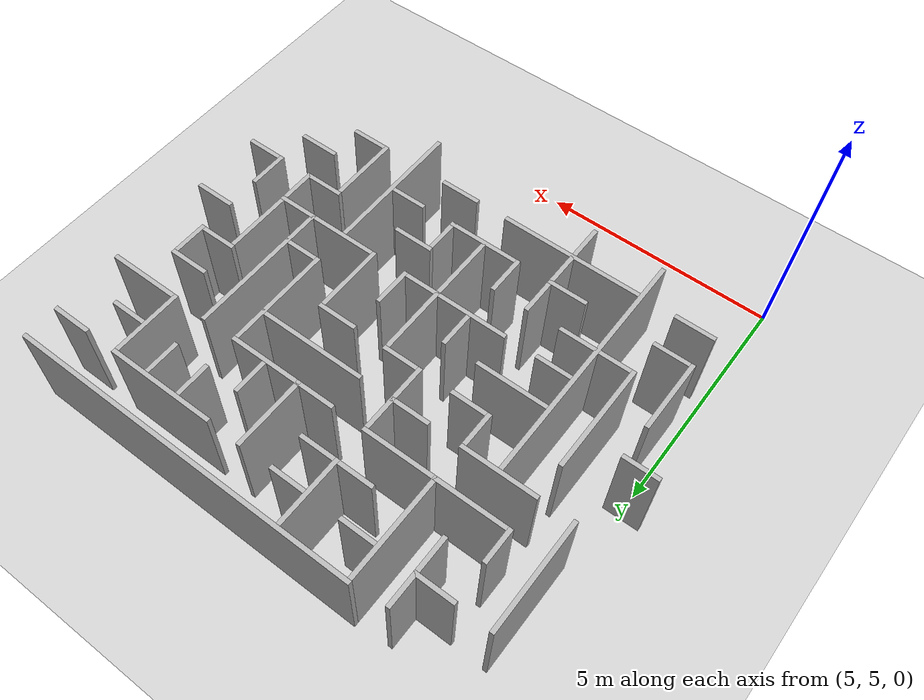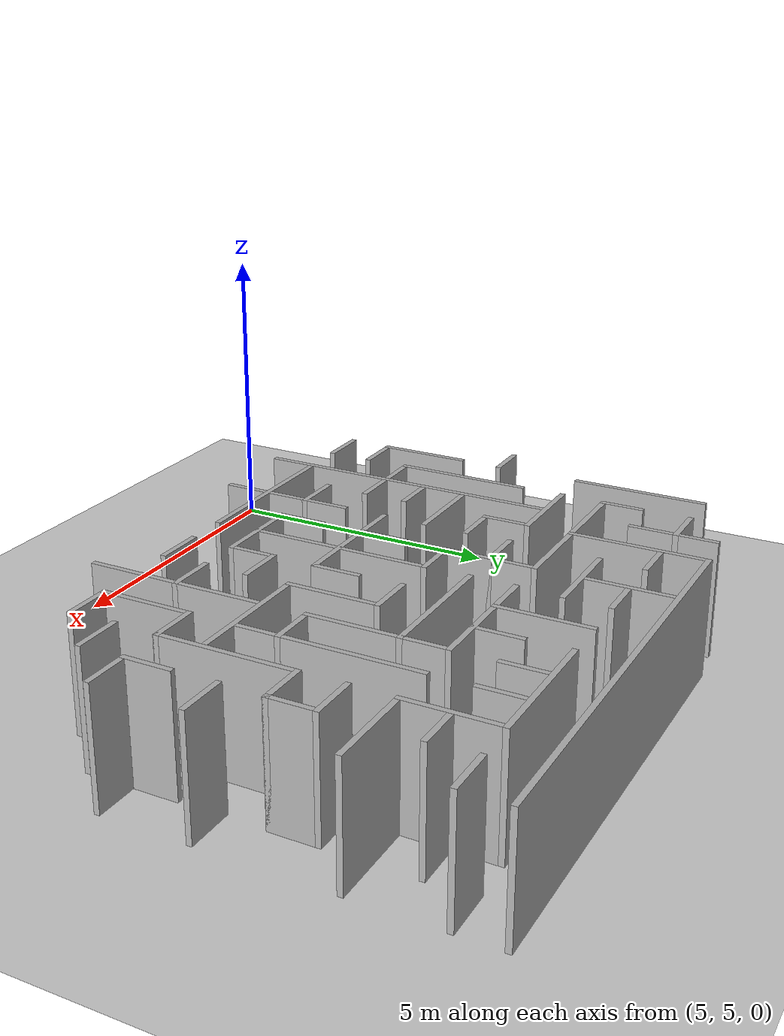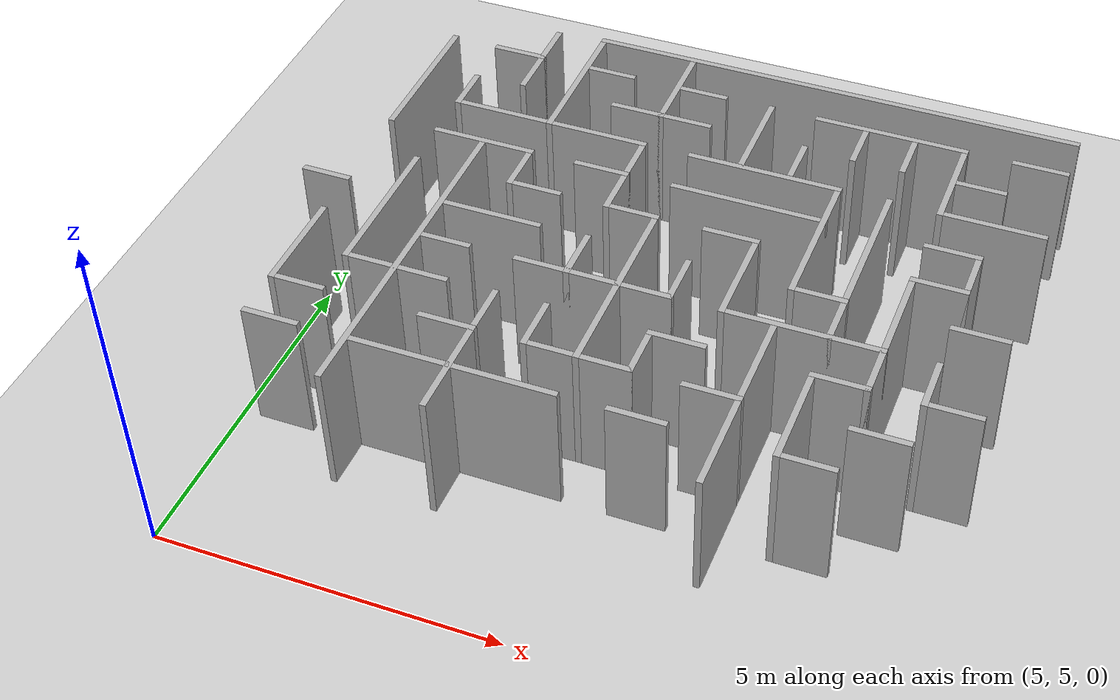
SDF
<sdf version="1.6">
 <world name="slam_world">
  <model name="ground_plane">
   <static>true</static>
   <link name="link">
    <collision name="collision">
     <geometry><plane><normal>0 0 1</normal><size>100 100</size></plane></geometry>
    </collision>
    <visual name="visual">
     <geometry><plane><normal>0 0 1</normal><size>100 100</size></plane></geometry>
     <material>
      <ambient>0.8 0.8 0.8 1</ambient>
      <diffuse>0.8 0.8 0.8 1</diffuse>
      <specular>0.8 0.8 0.8 1</specular>
     </material>
    </visual>
   </link>
  </model>
  <model name="wall_1">
   <static>true</static>
   <pose>11.203703703703704 14.907407407407408 1.0 0 0 0</pose>
   <link name="link">
    <collision name="collision">
     <geometry><box><size>7.500000000000001 0.0925925925925926 2.0</size></box></geometry>
    </collision>
    <visual name="visual">
     <geometry><box><size>7.500000000000001 0.0925925925925926 2.0</size></box></geometry>
     <material><ambient>0.5 0.5 0.5 1</ambient><diffuse>0.7 0.7 0.7 1</diffuse></material>
    </visual>
   </link>
  </model>
  <model name="wall_7">
   <static>true</static>
   <pose>6.7592592592592595 14.120370370370372 1.0 0 0 0</pose>
   <link name="link">
    <collision name="collision">
     <geometry><box><size>0.0925925925925926 1.4814814814814816 2.0</size></box></geometry>
    </collision>
    <visual name="visual">
     <geometry><box><size>0.0925925925925926 1.4814814814814816 2.0</size></box></geometry>
     <material><ambient>0.5 0.5 0.5 1</ambient><diffuse>0.7 0.7 0.7 1</diffuse></material>
    </visual>
   </link>
  </model>
  <model name="wall_8">
   <static>true</static>
   <pose>7.500000000000001 13.750000000000002 1.0 0 0 0</pose>
   <link name="link">
    <collision name="collision">
     <geometry><box><size>0.0925925925925926 2.2222222222222223 2.0</size></box></geometry>
    </collision>
    <visual name="visual">
     <geometry><box><size>0.0925925925925926 2.2222222222222223 2.0</size></box></geometry>
     <material><ambient>0.5 0.5 0.5 1</ambient><diffuse>0.7 0.7 0.7 1</diffuse></material>
    </visual>
   </link>
  </model>
  <model name="wall_9">
   <static>true</static>
   <pose>8.981481481481483 14.120370370370372 1.0 0 0 0</pose>
   <link name="link">
    <collision name="collision">
     <geometry><box><size>0.0925925925925926 1.4814814814814816 2.0</size></box></geometry>
    </collision>
    <visual name="visual">
     <geometry><box><size>0.0925925925925926 1.4814814814814816 2.0</size></box></geometry>
     <material><ambient>0.5 0.5 0.5 1</ambient><diffuse>0.7 0.7 0.7 1</diffuse></material>
    </visual>
   </link>
  </model>
  <model name="wall_13">
   <static>true</static>
   <pose>5.277777777777779 13.055555555555557 1.0 0 0 0</pose>
   <link name="link">
    <collision name="collision">
     <geometry><box><size>0.0925925925925926 2.314814814814815 2.0</size></box></geometry>
    </collision>
    <visual name="visual">
     <geometry><box><size>0.0925925925925926 2.314814814814815 2.0</size></box></geometry>
     <material><ambient>0.5 0.5 0.5 1</ambient><diffuse>0.7 0.7 0.7 1</diffuse></material>
    </visual>
   </link>
  </model>
  <model name="wall_14">
   <static>true</static>
   <pose>6.388888888888889 14.166666666666668 1.0 0 0 0</pose>
   <link name="link">
    <collision name="collision">
     <geometry><box><size>0.8333333333333334 0.0925925925925926 2.0</size></box></geometry>
    </collision>
    <visual name="visual">
     <geometry><box><size>0.8333333333333334 0.0925925925925926 2.0</size></box></geometry>
     <material><ambient>0.5 0.5 0.5 1</ambient><diffuse>0.7 0.7 0.7 1</diffuse></material>
    </visual>
   </link>
  </model>
  <model name="wall_15">
   <static>true</static>
   <pose>7.916666666666668 14.166666666666668 1.0 0 0 0</pose>
   <link name="link">
    <collision name="collision">
     <geometry><box><size>0.7407407407407408 0.0925925925925926 2.0</size></box></geometry>
    </collision>
    <visual name="visual">
     <geometry><box><size>0.7407407407407408 0.0925925925925926 2.0</size></box></geometry>
     <material><ambient>0.5 0.5 0.5 1</ambient><diffuse>0.7 0.7 0.7 1</diffuse></material>
    </visual>
   </link>
  </model>
  <model name="wall_16">
   <static>true</static>
   <pose>9.398148148148149 14.166666666666668 1.0 0 0 0</pose>
   <link name="link">
    <collision name="collision">
     <geometry><box><size>0.7407407407407408 0.0925925925925926 2.0</size></box></geometry>
    </collision>
    <visual name="visual">
     <geometry><box><size>0.7407407407407408 0.0925925925925926 2.0</size></box></geometry>
     <material><ambient>0.5 0.5 0.5 1</ambient><diffuse>0.7 0.7 0.7 1</diffuse></material>
    </visual>
   </link>
  </model>
  <model name="wall_17">
   <static>true</static>
   <pose>10.462962962962964 13.425925925925927 1.0 0 0 0</pose>
   <link name="link">
    <collision name="collision">
     <geometry><box><size>0.0925925925925926 1.5740740740740742 2.0</size></box></geometry>
    </collision>
    <visual name="visual">
     <geometry><box><size>0.0925925925925926 1.5740740740740742 2.0</size></box></geometry>
     <material><ambient>0.5 0.5 0.5 1</ambient><diffuse>0.7 0.7 0.7 1</diffuse></material>
    </visual>
   </link>
  </model>
  <model name="wall_18">
   <static>true</static>
   <pose>12.314814814814817 14.166666666666668 1.0 0 0 0</pose>
   <link name="link">
    <collision name="collision">
     <geometry><box><size>2.314814814814815 0.0925925925925926 2.0</size></box></geometry>
    </collision>
    <visual name="visual">
     <geometry><box><size>2.314814814814815 0.0925925925925926 2.0</size></box></geometry>
     <material><ambient>0.5 0.5 0.5 1</ambient><diffuse>0.7 0.7 0.7 1</diffuse></material>
    </visual>
   </link>
  </model>
  <model name="wall_19">
   <static>true</static>
   <pose>14.537037037037038 14.166666666666668 1.0 0 0 0</pose>
   <link name="link">
    <collision name="collision">
     <geometry><box><size>0.8333333333333334 0.0925925925925926 2.0</size></box></geometry>
    </collision>
    <visual name="visual">
     <geometry><box><size>0.8333333333333334 0.0925925925925926 2.0</size></box></geometry>
     <material><ambient>0.5 0.5 0.5 1</ambient><diffuse>0.7 0.7 0.7 1</diffuse></material>
    </visual>
   </link>
  </model>
  <model name="wall_21">
   <static>true</static>
   <pose>11.944444444444446 13.750000000000002 1.0 0 0 0</pose>
   <link name="link">
    <collision name="collision">
     <geometry><box><size>0.0925925925925926 0.7407407407407408 2.0</size></box></geometry>
    </collision>
    <visual name="visual">
     <geometry><box><size>0.0925925925925926 0.7407407407407408 2.0</size></box></geometry>
     <material><ambient>0.5 0.5 0.5 1</ambient><diffuse>0.7 0.7 0.7 1</diffuse></material>
    </visual>
   </link>
  </model>
  <model name="wall_22">
   <static>true</static>
   <pose>12.685185185185187 13.750000000000002 1.0 0 0 0</pose>
   <link name="link">
    <collision name="collision">
     <geometry><box><size>0.0925925925925926 0.7407407407407408 2.0</size></box></geometry>
    </collision>
    <visual name="visual">
     <geometry><box><size>0.0925925925925926 0.7407407407407408 2.0</size></box></geometry>
     <material><ambient>0.5 0.5 0.5 1</ambient><diffuse>0.7 0.7 0.7 1</diffuse></material>
    </visual>
   </link>
  </model>
  <model name="wall_23">
   <static>true</static>
   <pose>13.425925925925927 13.379629629629632 1.0 0 0 0</pose>
   <link name="link">
    <collision name="collision">
     <geometry><box><size>0.0925925925925926 1.4814814814814816 2.0</size></box></geometry>
    </collision>
    <visual name="visual">
     <geometry><box><size>0.0925925925925926 1.4814814814814816 2.0</size></box></geometry>
     <material><ambient>0.5 0.5 0.5 1</ambient><diffuse>0.7 0.7 0.7 1</diffuse></material>
    </visual>
   </link>
  </model>
  <model name="wall_26">
   <static>true</static>
   <pose>8.981481481481483 13.425925925925927 1.0 0 0 0</pose>
   <link name="link">
    <collision name="collision">
     <geometry><box><size>1.5740740740740742 0.0925925925925926 2.0</size></box></geometry>
    </collision>
    <visual name="visual">
     <geometry><box><size>1.5740740740740742 0.0925925925925926 2.0</size></box></geometry>
     <material><ambient>0.5 0.5 0.5 1</ambient><diffuse>0.7 0.7 0.7 1</diffuse></material>
    </visual>
   </link>
  </model>
  <model name="wall_27">
   <static>true</static>
   <pose>11.203703703703704 13.055555555555557 1.0 0 0 0</pose>
   <link name="link">
    <collision name="collision">
     <geometry><box><size>0.0925925925925926 0.8333333333333334 2.0</size></box></geometry>
    </collision>
    <visual name="visual">
     <geometry><box><size>0.0925925925925926 0.8333333333333334 2.0</size></box></geometry>
     <material><ambient>0.5 0.5 0.5 1</ambient><diffuse>0.7 0.7 0.7 1</diffuse></material>
    </visual>
   </link>
  </model>
  <model name="wall_28">
   <static>true</static>
   <pose>13.842592592592593 13.425925925925927 1.0 0 0 0</pose>
   <link name="link">
    <collision name="collision">
     <geometry><box><size>0.7407407407407408 0.0925925925925926 2.0</size></box></geometry>
    </collision>
    <visual name="visual">
     <geometry><box><size>0.7407407407407408 0.0925925925925926 2.0</size></box></geometry>
     <material><ambient>0.5 0.5 0.5 1</ambient><diffuse>0.7 0.7 0.7 1</diffuse></material>
    </visual>
   </link>
  </model>
  <model name="wall_30">
   <static>true</static>
   <pose>6.018518518518519 13.009259259259261 1.0 0 0 0</pose>
   <link name="link">
    <collision name="collision">
     <geometry><box><size>0.0925925925925926 0.7407407407407408 2.0</size></box></geometry>
    </collision>
    <visual name="visual">
     <geometry><box><size>0.0925925925925926 0.7407407407407408 2.0</size></box></geometry>
     <material><ambient>0.5 0.5 0.5 1</ambient><diffuse>0.7 0.7 0.7 1</diffuse></material>
    </visual>
   </link>
  </model>
  <model name="wall_34">
   <static>true</static>
   <pose>7.546296296296297 12.685185185185187 1.0 0 0 0</pose>
   <link name="link">
    <collision name="collision">
     <geometry><box><size>2.9629629629629632 0.0925925925925926 2.0</size></box></geometry>
    </collision>
    <visual name="visual">
     <geometry><box><size>2.9629629629629632 0.0925925925925926 2.0</size></box></geometry>
     <material><ambient>0.5 0.5 0.5 1</ambient><diffuse>0.7 0.7 0.7 1</diffuse></material>
    </visual>
   </link>
  </model>
  <model name="wall_35">
   <static>true</static>
   <pose>10.833333333333334 12.685185185185187 1.0 0 0 0</pose>
   <link name="link">
    <collision name="collision">
     <geometry><box><size>2.314814814814815 0.0925925925925926 2.0</size></box></geometry>
    </collision>
    <visual name="visual">
     <geometry><box><size>2.314814814814815 0.0925925925925926 2.0</size></box></geometry>
     <material><ambient>0.5 0.5 0.5 1</ambient><diffuse>0.7 0.7 0.7 1</diffuse></material>
    </visual>
   </link>
  </model>
  <model name="wall_36">
   <static>true</static>
   <pose>12.685185185185187 11.203703703703704 1.0 0 0 0</pose>
   <link name="link">
    <collision name="collision">
     <geometry><box><size>0.0925925925925926 3.055555555555556 2.0</size></box></geometry>
    </collision>
    <visual name="visual">
     <geometry><box><size>0.0925925925925926 3.055555555555556 2.0</size></box></geometry>
     <material><ambient>0.5 0.5 0.5 1</ambient><diffuse>0.7 0.7 0.7 1</diffuse></material>
    </visual>
   </link>
  </model>
  <model name="wall_37">
   <static>true</static>
   <pose>14.212962962962964 12.685185185185187 1.0 0 0 0</pose>
   <link name="link">
    <collision name="collision">
     <geometry><box><size>1.4814814814814816 0.0925925925925926 2.0</size></box></geometry>
    </collision>
    <visual name="visual">
     <geometry><box><size>1.4814814814814816 0.0925925925925926 2.0</size></box></geometry>
     <material><ambient>0.5 0.5 0.5 1</ambient><diffuse>0.7 0.7 0.7 1</diffuse></material>
    </visual>
   </link>
  </model>
  <model name="wall_39">
   <static>true</static>
   <pose>8.981481481481483 11.898148148148149 1.0 0 0 0</pose>
   <link name="link">
    <collision name="collision">
     <geometry><box><size>0.0925925925925926 1.4814814814814816 2.0</size></box></geometry>
    </collision>
    <visual name="visual">
     <geometry><box><size>0.0925925925925926 1.4814814814814816 2.0</size></box></geometry>
     <material><ambient>0.5 0.5 0.5 1</ambient><diffuse>0.7 0.7 0.7 1</diffuse></material>
    </visual>
   </link>
  </model>
  <model name="wall_40">
   <static>true</static>
   <pose>11.944444444444446 11.527777777777779 1.0 0 0 0</pose>
   <link name="link">
    <collision name="collision">
     <geometry><box><size>0.0925925925925926 2.2222222222222223 2.0</size></box></geometry>
    </collision>
    <visual name="visual">
     <geometry><box><size>0.0925925925925926 2.2222222222222223 2.0</size></box></geometry>
     <material><ambient>0.5 0.5 0.5 1</ambient><diffuse>0.7 0.7 0.7 1</diffuse></material>
    </visual>
   </link>
  </model>
  <model name="wall_45">
   <static>true</static>
   <pose>6.7592592592592595 11.944444444444446 1.0 0 0 0</pose>
   <link name="link">
    <collision name="collision">
     <geometry><box><size>1.5740740740740742 0.0925925925925926 2.0</size></box></geometry>
    </collision>
    <visual name="visual">
     <geometry><box><size>1.5740740740740742 0.0925925925925926 2.0</size></box></geometry>
     <material><ambient>0.5 0.5 0.5 1</ambient><diffuse>0.7 0.7 0.7 1</diffuse></material>
    </visual>
   </link>
  </model>
  <model name="wall_46">
   <static>true</static>
   <pose>8.611111111111112 11.944444444444446 1.0 0 0 0</pose>
   <link name="link">
    <collision name="collision">
     <geometry><box><size>0.8333333333333334 0.0925925925925926 2.0</size></box></geometry>
    </collision>
    <visual name="visual">
     <geometry><box><size>0.8333333333333334 0.0925925925925926 2.0</size></box></geometry>
     <material><ambient>0.5 0.5 0.5 1</ambient><diffuse>0.7 0.7 0.7 1</diffuse></material>
    </visual>
   </link>
  </model>
  <model name="wall_47">
   <static>true</static>
   <pose>10.833333333333334 11.944444444444446 1.0 0 0 0</pose>
   <link name="link">
    <collision name="collision">
     <geometry><box><size>2.314814814814815 0.0925925925925926 2.0</size></box></geometry>
    </collision>
    <visual name="visual">
     <geometry><box><size>2.314814814814815 0.0925925925925926 2.0</size></box></geometry>
     <material><ambient>0.5 0.5 0.5 1</ambient><diffuse>0.7 0.7 0.7 1</diffuse></material>
    </visual>
   </link>
  </model>
  <model name="wall_48">
   <static>true</static>
   <pose>13.796296296296298 11.944444444444446 1.0 0 0 0</pose>
   <link name="link">
    <collision name="collision">
     <geometry><box><size>0.8333333333333334 0.0925925925925926 2.0</size></box></geometry>
    </collision>
    <visual name="visual">
     <geometry><box><size>0.8333333333333334 0.0925925925925926 2.0</size></box></geometry>
     <material><ambient>0.5 0.5 0.5 1</ambient><diffuse>0.7 0.7 0.7 1</diffuse></material>
    </visual>
   </link>
  </model>
  <model name="wall_49">
   <static>true</static>
   <pose>6.7592592592592595 9.305555555555557 1.0 0 0 0</pose>
   <link name="link">
    <collision name="collision">
     <geometry><box><size>0.0925925925925926 5.185185185185186 2.0</size></box></geometry>
    </collision>
    <visual name="visual">
     <geometry><box><size>0.0925925925925926 5.185185185185186 2.0</size></box></geometry>
     <material><ambient>0.5 0.5 0.5 1</ambient><diffuse>0.7 0.7 0.7 1</diffuse></material>
    </visual>
   </link>
  </model>
  <model name="wall_50">
   <static>true</static>
   <pose>7.500000000000001 11.527777777777779 1.0 0 0 0</pose>
   <link name="link">
    <collision name="collision">
     <geometry><box><size>0.0925925925925926 0.7407407407407408 2.0</size></box></geometry>
    </collision>
    <visual name="visual">
     <geometry><box><size>0.0925925925925926 0.7407407407407408 2.0</size></box></geometry>
     <material><ambient>0.5 0.5 0.5 1</ambient><diffuse>0.7 0.7 0.7 1</diffuse></material>
    </visual>
   </link>
  </model>
  <model name="wall_51">
   <static>true</static>
   <pose>14.166666666666668 11.527777777777779 1.0 0 0 0</pose>
   <link name="link">
    <collision name="collision">
     <geometry><box><size>0.0925925925925926 0.7407407407407408 2.0</size></box></geometry>
    </collision>
    <visual name="visual">
     <geometry><box><size>0.0925925925925926 0.7407407407407408 2.0</size></box></geometry>
     <material><ambient>0.5 0.5 0.5 1</ambient><diffuse>0.7 0.7 0.7 1</diffuse></material>
    </visual>
   </link>
  </model>
  <model name="wall_54">
   <static>true</static>
   <pose>6.018518518518519 10.092592592592593 1.0 0 0 0</pose>
   <link name="link">
    <collision name="collision">
     <geometry><box><size>0.0925925925925926 2.314814814814815 2.0</size></box></geometry>
    </collision>
    <visual name="visual">
     <geometry><box><size>0.0925925925925926 2.314814814814815 2.0</size></box></geometry>
     <material><ambient>0.5 0.5 0.5 1</ambient><diffuse>0.7 0.7 0.7 1</diffuse></material>
    </visual>
   </link>
  </model>
  <model name="wall_55">
   <static>true</static>
   <pose>7.916666666666668 11.203703703703704 1.0 0 0 0</pose>
   <link name="link">
    <collision name="collision">
     <geometry><box><size>0.7407407407407408 0.0925925925925926 2.0</size></box></geometry>
    </collision>
    <visual name="visual">
     <geometry><box><size>0.7407407407407408 0.0925925925925926 2.0</size></box></geometry>
     <material><ambient>0.5 0.5 0.5 1</ambient><diffuse>0.7 0.7 0.7 1</diffuse></material>
    </visual>
   </link>
  </model>
  <model name="wall_56">
   <static>true</static>
   <pose>9.398148148148149 11.203703703703704 1.0 0 0 0</pose>
   <link name="link">
    <collision name="collision">
     <geometry><box><size>0.7407407407407408 0.0925925925925926 2.0</size></box></geometry>
    </collision>
    <visual name="visual">
     <geometry><box><size>0.7407407407407408 0.0925925925925926 2.0</size></box></geometry>
     <material><ambient>0.5 0.5 0.5 1</ambient><diffuse>0.7 0.7 0.7 1</diffuse></material>
    </visual>
   </link>
  </model>
  <model name="wall_57">
   <static>true</static>
   <pose>10.833333333333334 11.203703703703704 1.0 0 0 0</pose>
   <link name="link">
    <collision name="collision">
     <geometry><box><size>0.8333333333333334 0.0925925925925926 2.0</size></box></geometry>
    </collision>
    <visual name="visual">
     <geometry><box><size>0.8333333333333334 0.0925925925925926 2.0</size></box></geometry>
     <material><ambient>0.5 0.5 0.5 1</ambient><diffuse>0.7 0.7 0.7 1</diffuse></material>
    </visual>
   </link>
  </model>
  <model name="wall_58">
   <static>true</static>
   <pose>13.796296296296298 11.203703703703704 1.0 0 0 0</pose>
   <link name="link">
    <collision name="collision">
     <geometry><box><size>0.8333333333333334 0.0925925925925926 2.0</size></box></geometry>
    </collision>
    <visual name="visual">
     <geometry><box><size>0.8333333333333334 0.0925925925925926 2.0</size></box></geometry>
     <material><ambient>0.5 0.5 0.5 1</ambient><diffuse>0.7 0.7 0.7 1</diffuse></material>
    </visual>
   </link>
  </model>
  <model name="wall_59">
   <static>true</static>
   <pose>9.722222222222223 9.675925925925927 1.0 0 0 0</pose>
   <link name="link">
    <collision name="collision">
     <geometry><box><size>0.0925925925925926 2.9629629629629632 2.0</size></box></geometry>
    </collision>
    <visual name="visual">
     <geometry><box><size>0.0925925925925926 2.9629629629629632 2.0</size></box></geometry>
     <material><ambient>0.5 0.5 0.5 1</ambient><diffuse>0.7 0.7 0.7 1</diffuse></material>
    </visual>
   </link>
  </model>
  <model name="wall_60">
   <static>true</static>
   <pose>11.203703703703704 10.416666666666668 1.0 0 0 0</pose>
   <link name="link">
    <collision name="collision">
     <geometry><box><size>0.0925925925925926 1.4814814814814816 2.0</size></box></geometry>
    </collision>
    <visual name="visual">
     <geometry><box><size>0.0925925925925926 1.4814814814814816 2.0</size></box></geometry>
     <material><ambient>0.5 0.5 0.5 1</ambient><diffuse>0.7 0.7 0.7 1</diffuse></material>
    </visual>
   </link>
  </model>
  <model name="wall_61">
   <static>true</static>
   <pose>13.425925925925927 10.046296296296298 1.0 0 0 0</pose>
   <link name="link">
    <collision name="collision">
     <geometry><box><size>0.0925925925925926 2.2222222222222223 2.0</size></box></geometry>
    </collision>
    <visual name="visual">
     <geometry><box><size>0.0925925925925926 2.2222222222222223 2.0</size></box></geometry>
     <material><ambient>0.5 0.5 0.5 1</ambient><diffuse>0.7 0.7 0.7 1</diffuse></material>
    </visual>
   </link>
  </model>
  <model name="wall_64">
   <static>true</static>
   <pose>4.953703703703704 10.462962962962964 1.0 0 0 0</pose>
   <link name="link">
    <collision name="collision">
     <geometry><box><size>0.7407407407407408 0.0925925925925926 2.0</size></box></geometry>
    </collision>
    <visual name="visual">
     <geometry><box><size>0.7407407407407408 0.0925925925925926 2.0</size></box></geometry>
     <material><ambient>0.5 0.5 0.5 1</ambient><diffuse>0.7 0.7 0.7 1</diffuse></material>
    </visual>
   </link>
  </model>
  <model name="wall_65">
   <static>true</static>
   <pose>7.546296296296297 10.462962962962964 1.0 0 0 0</pose>
   <link name="link">
    <collision name="collision">
     <geometry><box><size>1.4814814814814816 0.0925925925925926 2.0</size></box></geometry>
    </collision>
    <visual name="visual">
     <geometry><box><size>1.4814814814814816 0.0925925925925926 2.0</size></box></geometry>
     <material><ambient>0.5 0.5 0.5 1</ambient><diffuse>0.7 0.7 0.7 1</diffuse></material>
    </visual>
   </link>
  </model>
  <model name="wall_66">
   <static>true</static>
   <pose>8.981481481481483 10.092592592592593 1.0 0 0 0</pose>
   <link name="link">
    <collision name="collision">
     <geometry><box><size>0.0925925925925926 0.8333333333333334 2.0</size></box></geometry>
    </collision>
    <visual name="visual">
     <geometry><box><size>0.0925925925925926 0.8333333333333334 2.0</size></box></geometry>
     <material><ambient>0.5 0.5 0.5 1</ambient><diffuse>0.7 0.7 0.7 1</diffuse></material>
    </visual>
   </link>
  </model>
  <model name="wall_67">
   <static>true</static>
   <pose>10.462962962962964 10.092592592592593 1.0 0 0 0</pose>
   <link name="link">
    <collision name="collision">
     <geometry><box><size>0.0925925925925926 0.8333333333333334 2.0</size></box></geometry>
    </collision>
    <visual name="visual">
     <geometry><box><size>0.0925925925925926 0.8333333333333334 2.0</size></box></geometry>
     <material><ambient>0.5 0.5 0.5 1</ambient><diffuse>0.7 0.7 0.7 1</diffuse></material>
    </visual>
   </link>
  </model>
  <model name="wall_68">
   <static>true</static>
   <pose>12.361111111111112 10.462962962962964 1.0 0 0 0</pose>
   <link name="link">
    <collision name="collision">
     <geometry><box><size>0.7407407407407408 0.0925925925925926 2.0</size></box></geometry>
    </collision>
    <visual name="visual">
     <geometry><box><size>0.7407407407407408 0.0925925925925926 2.0</size></box></geometry>
     <material><ambient>0.5 0.5 0.5 1</ambient><diffuse>0.7 0.7 0.7 1</diffuse></material>
    </visual>
   </link>
  </model>
  <model name="wall_69">
   <static>true</static>
   <pose>14.537037037037038 10.462962962962964 1.0 0 0 0</pose>
   <link name="link">
    <collision name="collision">
     <geometry><box><size>0.8333333333333334 0.0925925925925926 2.0</size></box></geometry>
    </collision>
    <visual name="visual">
     <geometry><box><size>0.8333333333333334 0.0925925925925926 2.0</size></box></geometry>
     <material><ambient>0.5 0.5 0.5 1</ambient><diffuse>0.7 0.7 0.7 1</diffuse></material>
    </visual>
   </link>
  </model>
  <model name="wall_74">
   <static>true</static>
   <pose>5.277777777777779 8.981481481481483 1.0 0 0 0</pose>
   <link name="link">
    <collision name="collision">
     <geometry><box><size>0.0925925925925926 1.5740740740740742 2.0</size></box></geometry>
    </collision>
    <visual name="visual">
     <geometry><box><size>0.0925925925925926 1.5740740740740742 2.0</size></box></geometry>
     <material><ambient>0.5 0.5 0.5 1</ambient><diffuse>0.7 0.7 0.7 1</diffuse></material>
    </visual>
   </link>
  </model>
  <model name="wall_75">
   <static>true</static>
   <pose>7.1759259259259265 9.722222222222223 1.0 0 0 0</pose>
   <link name="link">
    <collision name="collision">
     <geometry><box><size>0.7407407407407408 0.0925925925925926 2.0</size></box></geometry>
    </collision>
    <visual name="visual">
     <geometry><box><size>0.7407407407407408 0.0925925925925926 2.0</size></box></geometry>
     <material><ambient>0.5 0.5 0.5 1</ambient><diffuse>0.7 0.7 0.7 1</diffuse></material>
    </visual>
   </link>
  </model>
  <model name="wall_76">
   <static>true</static>
   <pose>9.351851851851853 9.722222222222223 1.0 0 0 0</pose>
   <link name="link">
    <collision name="collision">
     <geometry><box><size>2.314814814814815 0.0925925925925926 2.0</size></box></geometry>
    </collision>
    <visual name="visual">
     <geometry><box><size>2.314814814814815 0.0925925925925926 2.0</size></box></geometry>
     <material><ambient>0.5 0.5 0.5 1</ambient><diffuse>0.7 0.7 0.7 1</diffuse></material>
    </visual>
   </link>
  </model>
  <model name="wall_77">
   <static>true</static>
   <pose>12.361111111111112 9.722222222222223 1.0 0 0 0</pose>
   <link name="link">
    <collision name="collision">
     <geometry><box><size>2.2222222222222223 0.0925925925925926 2.0</size></box></geometry>
    </collision>
    <visual name="visual">
     <geometry><box><size>2.2222222222222223 0.0925925925925926 2.0</size></box></geometry>
     <material><ambient>0.5 0.5 0.5 1</ambient><diffuse>0.7 0.7 0.7 1</diffuse></material>
    </visual>
   </link>
  </model>
  <model name="wall_78">
   <static>true</static>
   <pose>14.166666666666668 9.351851851851853 1.0 0 0 0</pose>
   <link name="link">
    <collision name="collision">
     <geometry><box><size>0.0925925925925926 0.8333333333333334 2.0</size></box></geometry>
    </collision>
    <visual name="visual">
     <geometry><box><size>0.0925925925925926 0.8333333333333334 2.0</size></box></geometry>
     <material><ambient>0.5 0.5 0.5 1</ambient><diffuse>0.7 0.7 0.7 1</diffuse></material>
    </visual>
   </link>
  </model>
  <model name="wall_82">
   <static>true</static>
   <pose>11.944444444444446 8.194444444444445 1.0 0 0 0</pose>
   <link name="link">
    <collision name="collision">
     <geometry><box><size>0.0925925925925926 2.9629629629629632 2.0</size></box></geometry>
    </collision>
    <visual name="visual">
     <geometry><box><size>0.0925925925925926 2.9629629629629632 2.0</size></box></geometry>
     <material><ambient>0.5 0.5 0.5 1</ambient><diffuse>0.7 0.7 0.7 1</diffuse></material>
    </visual>
   </link>
  </model>
  <model name="wall_85">
   <static>true</static>
   <pose>6.805555555555556 8.981481481481483 1.0 0 0 0</pose>
   <link name="link">
    <collision name="collision">
     <geometry><box><size>1.4814814814814816 0.0925925925925926 2.0</size></box></geometry>
    </collision>
    <visual name="visual">
     <geometry><box><size>1.4814814814814816 0.0925925925925926 2.0</size></box></geometry>
     <material><ambient>0.5 0.5 0.5 1</ambient><diffuse>0.7 0.7 0.7 1</diffuse></material>
    </visual>
   </link>
  </model>
  <model name="wall_86">
   <static>true</static>
   <pose>8.240740740740742 7.870370370370371 1.0 0 0 0</pose>
   <link name="link">
    <collision name="collision">
     <geometry><box><size>0.0925925925925926 2.314814814814815 2.0</size></box></geometry>
    </collision>
    <visual name="visual">
     <geometry><box><size>0.0925925925925926 2.314814814814815 2.0</size></box></geometry>
     <material><ambient>0.5 0.5 0.5 1</ambient><diffuse>0.7 0.7 0.7 1</diffuse></material>
    </visual>
   </link>
  </model>
  <model name="wall_87">
   <static>true</static>
   <pose>8.981481481481483 8.611111111111112 1.0 0 0 0</pose>
   <link name="link">
    <collision name="collision">
     <geometry><box><size>0.0925925925925926 0.8333333333333334 2.0</size></box></geometry>
    </collision>
    <visual name="visual">
     <geometry><box><size>0.0925925925925926 0.8333333333333334 2.0</size></box></geometry>
     <material><ambient>0.5 0.5 0.5 1</ambient><diffuse>0.7 0.7 0.7 1</diffuse></material>
    </visual>
   </link>
  </model>
  <model name="wall_88">
   <static>true</static>
   <pose>10.833333333333334 8.981481481481483 1.0 0 0 0</pose>
   <link name="link">
    <collision name="collision">
     <geometry><box><size>0.8333333333333334 0.0925925925925926 2.0</size></box></geometry>
    </collision>
    <visual name="visual">
     <geometry><box><size>0.8333333333333334 0.0925925925925926 2.0</size></box></geometry>
     <material><ambient>0.5 0.5 0.5 1</ambient><diffuse>0.7 0.7 0.7 1</diffuse></material>
    </visual>
   </link>
  </model>
  <model name="wall_89">
   <static>true</static>
   <pose>13.055555555555557 8.981481481481483 1.0 0 0 0</pose>
   <link name="link">
    <collision name="collision">
     <geometry><box><size>0.8333333333333334 0.0925925925925926 2.0</size></box></geometry>
    </collision>
    <visual name="visual">
     <geometry><box><size>0.8333333333333334 0.0925925925925926 2.0</size></box></geometry>
     <material><ambient>0.5 0.5 0.5 1</ambient><diffuse>0.7 0.7 0.7 1</diffuse></material>
    </visual>
   </link>
  </model>
  <model name="wall_90">
   <static>true</static>
   <pose>14.583333333333334 8.981481481481483 1.0 0 0 0</pose>
   <link name="link">
    <collision name="collision">
     <geometry><box><size>0.7407407407407408 0.0925925925925926 2.0</size></box></geometry>
    </collision>
    <visual name="visual">
     <geometry><box><size>0.7407407407407408 0.0925925925925926 2.0</size></box></geometry>
     <material><ambient>0.5 0.5 0.5 1</ambient><diffuse>0.7 0.7 0.7 1</diffuse></material>
    </visual>
   </link>
  </model>
  <model name="wall_91">
   <static>true</static>
   <pose>10.462962962962964 8.564814814814815 1.0 0 0 0</pose>
   <link name="link">
    <collision name="collision">
     <geometry><box><size>0.0925925925925926 0.7407407407407408 2.0</size></box></geometry>
    </collision>
    <visual name="visual">
     <geometry><box><size>0.0925925925925926 0.7407407407407408 2.0</size></box></geometry>
     <material><ambient>0.5 0.5 0.5 1</ambient><diffuse>0.7 0.7 0.7 1</diffuse></material>
    </visual>
   </link>
  </model>
  <model name="wall_92">
   <static>true</static>
   <pose>12.685185185185187 8.194444444444445 1.0 0 0 0</pose>
   <link name="link">
    <collision name="collision">
     <geometry><box><size>0.0925925925925926 1.4814814814814816 2.0</size></box></geometry>
    </collision>
    <visual name="visual">
     <geometry><box><size>0.0925925925925926 1.4814814814814816 2.0</size></box></geometry>
     <material><ambient>0.5 0.5 0.5 1</ambient><diffuse>0.7 0.7 0.7 1</diffuse></material>
    </visual>
   </link>
  </model>
  <model name="wall_95">
   <static>true</static>
   <pose>5.694444444444445 8.240740740740742 1.0 0 0 0</pose>
   <link name="link">
    <collision name="collision">
     <geometry><box><size>0.7407407407407408 0.0925925925925926 2.0</size></box></geometry>
    </collision>
    <visual name="visual">
     <geometry><box><size>0.7407407407407408 0.0925925925925926 2.0</size></box></geometry>
     <material><ambient>0.5 0.5 0.5 1</ambient><diffuse>0.7 0.7 0.7 1</diffuse></material>
    </visual>
   </link>
  </model>
  <model name="wall_96">
   <static>true</static>
   <pose>7.870370370370371 8.240740740740742 1.0 0 0 0</pose>
   <link name="link">
    <collision name="collision">
     <geometry><box><size>0.8333333333333334 0.0925925925925926 2.0</size></box></geometry>
    </collision>
    <visual name="visual">
     <geometry><box><size>0.8333333333333334 0.0925925925925926 2.0</size></box></geometry>
     <material><ambient>0.5 0.5 0.5 1</ambient><diffuse>0.7 0.7 0.7 1</diffuse></material>
    </visual>
   </link>
  </model>
  <model name="wall_97">
   <static>true</static>
   <pose>9.768518518518519 8.240740740740742 1.0 0 0 0</pose>
   <link name="link">
    <collision name="collision">
     <geometry><box><size>1.4814814814814816 0.0925925925925926 2.0</size></box></geometry>
    </collision>
    <visual name="visual">
     <geometry><box><size>1.4814814814814816 0.0925925925925926 2.0</size></box></geometry>
     <material><ambient>0.5 0.5 0.5 1</ambient><diffuse>0.7 0.7 0.7 1</diffuse></material>
    </visual>
   </link>
  </model>
  <model name="wall_98">
   <static>true</static>
   <pose>11.574074074074074 8.240740740740742 1.0 0 0 0</pose>
   <link name="link">
    <collision name="collision">
     <geometry><box><size>0.8333333333333334 0.0925925925925926 2.0</size></box></geometry>
    </collision>
    <visual name="visual">
     <geometry><box><size>0.8333333333333334 0.0925925925925926 2.0</size></box></geometry>
     <material><ambient>0.5 0.5 0.5 1</ambient><diffuse>0.7 0.7 0.7 1</diffuse></material>
    </visual>
   </link>
  </model>
  <model name="wall_99">
   <static>true</static>
   <pose>13.796296296296298 8.240740740740742 1.0 0 0 0</pose>
   <link name="link">
    <collision name="collision">
     <geometry><box><size>0.8333333333333334 0.0925925925925926 2.0</size></box></geometry>
    </collision>
    <visual name="visual">
     <geometry><box><size>0.8333333333333334 0.0925925925925926 2.0</size></box></geometry>
     <material><ambient>0.5 0.5 0.5 1</ambient><diffuse>0.7 0.7 0.7 1</diffuse></material>
    </visual>
   </link>
  </model>
  <model name="wall_106">
   <static>true</static>
   <pose>5.648148148148149 7.500000000000001 1.0 0 0 0</pose>
   <link name="link">
    <collision name="collision">
     <geometry><box><size>0.8333333333333334 0.0925925925925926 2.0</size></box></geometry>
    </collision>
    <visual name="visual">
     <geometry><box><size>0.8333333333333334 0.0925925925925926 2.0</size></box></geometry>
     <material><ambient>0.5 0.5 0.5 1</ambient><diffuse>0.7 0.7 0.7 1</diffuse></material>
    </visual>
   </link>
  </model>
  <model name="wall_107">
   <static>true</static>
   <pose>8.287037037037038 7.500000000000001 1.0 0 0 0</pose>
   <link name="link">
    <collision name="collision">
     <geometry><box><size>2.9629629629629632 0.0925925925925926 2.0</size></box></geometry>
    </collision>
    <visual name="visual">
     <geometry><box><size>2.9629629629629632 0.0925925925925926 2.0</size></box></geometry>
     <material><ambient>0.5 0.5 0.5 1</ambient><diffuse>0.7 0.7 0.7 1</diffuse></material>
    </visual>
   </link>
  </model>
  <model name="wall_108">
   <static>true</static>
   <pose>10.833333333333334 7.500000000000001 1.0 0 0 0</pose>
   <link name="link">
    <collision name="collision">
     <geometry><box><size>0.8333333333333334 0.0925925925925926 2.0</size></box></geometry>
    </collision>
    <visual name="visual">
     <geometry><box><size>0.8333333333333334 0.0925925925925926 2.0</size></box></geometry>
     <material><ambient>0.5 0.5 0.5 1</ambient><diffuse>0.7 0.7 0.7 1</diffuse></material>
    </visual>
   </link>
  </model>
  <model name="wall_109">
   <static>true</static>
   <pose>13.101851851851853 7.500000000000001 1.0 0 0 0</pose>
   <link name="link">
    <collision name="collision">
     <geometry><box><size>0.7407407407407408 0.0925925925925926 2.0</size></box></geometry>
    </collision>
    <visual name="visual">
     <geometry><box><size>0.7407407407407408 0.0925925925925926 2.0</size></box></geometry>
     <material><ambient>0.5 0.5 0.5 1</ambient><diffuse>0.7 0.7 0.7 1</diffuse></material>
    </visual>
   </link>
  </model>
 </world>
</sdf>
